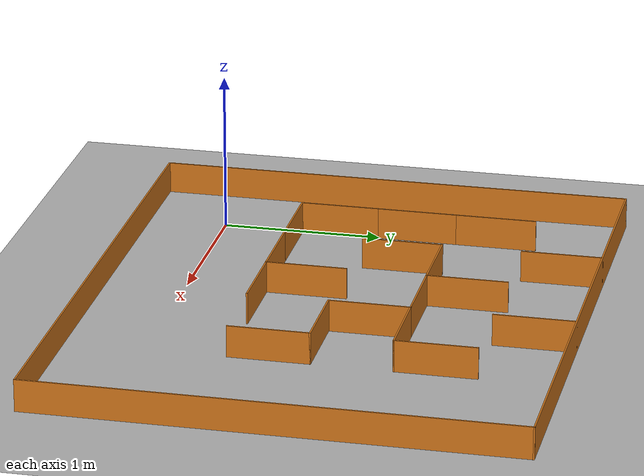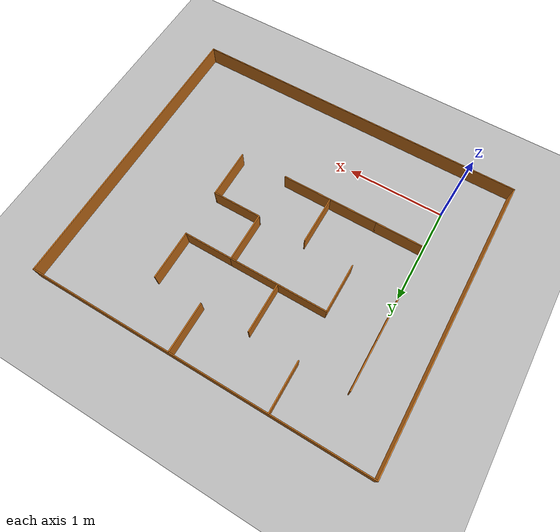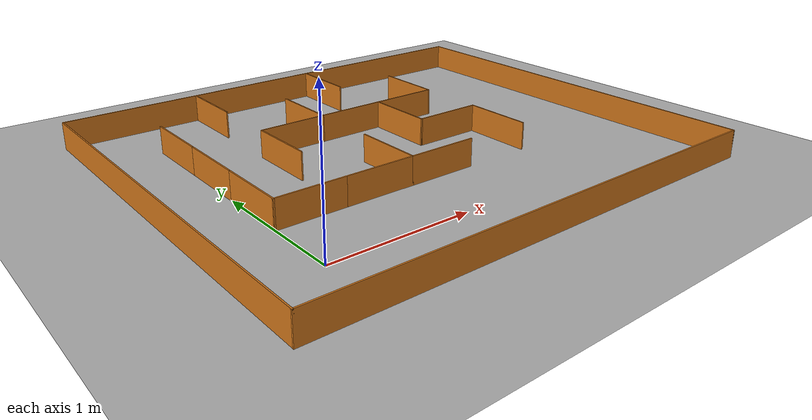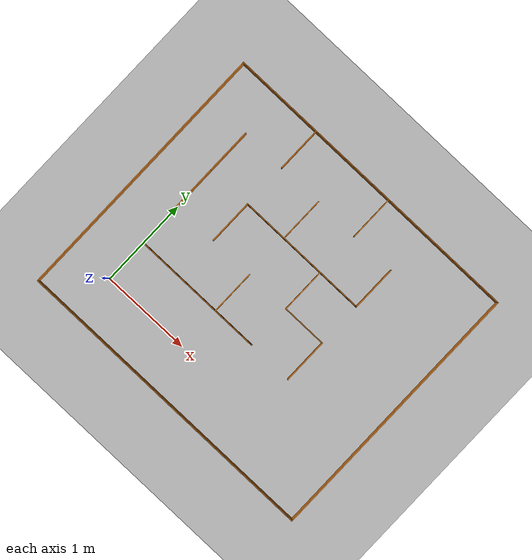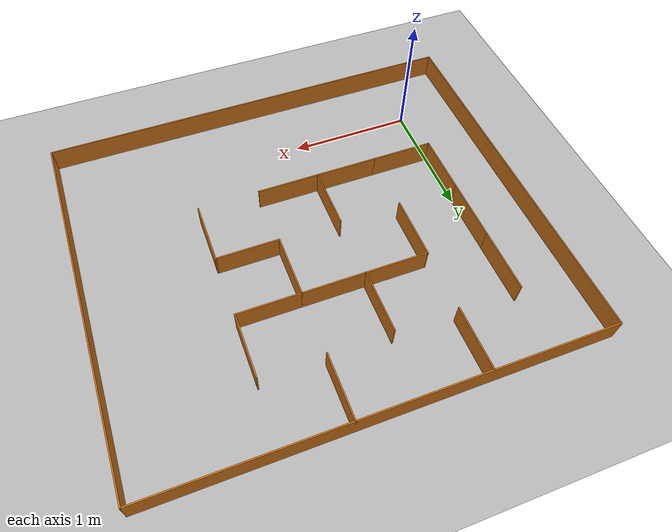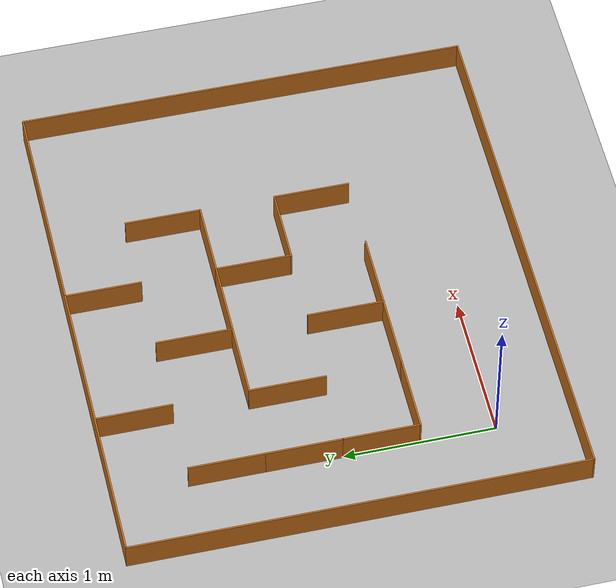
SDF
<?xml version="1.0" ?>
<!-- GENERATED by maze_tools.py from config/maze_layout.yaml - edit the layout, not this file. -->
<sdf version="1.8">
  <world name="maze">
    <physics name="1ms" type="ignored"><max_step_size>0.004</max_step_size><real_time_factor>1.0</real_time_factor></physics>
    <plugin filename="gz-sim-physics-system" name="gz::sim::systems::Physics"/>
    <plugin filename="gz-sim-user-commands-system" name="gz::sim::systems::UserCommands"/>
    <plugin filename="gz-sim-scene-broadcaster-system" name="gz::sim::systems::SceneBroadcaster"/>
    <plugin filename="gz-sim-sensors-system" name="gz::sim::systems::Sensors">
      <render_engine>ogre2</render_engine>
    </plugin>
    <plugin filename="gz-sim-imu-system" name="gz::sim::systems::Imu"/>
    <light type="directional" name="sun">
      <cast_shadows>false</cast_shadows><pose>0 0 10 0 0 0</pose>
      <diffuse>0.9 0.9 0.9 1</diffuse><specular>0.2 0.2 0.2 1</specular>
      <direction>-0.5 0.1 -0.9</direction>
    </light>
    <model name="ground_plane">
      <static>true</static>
      <pose>1.2500 1.0000 0 0 0 0</pose>
      <link name="link">
        <collision name="collision"><geometry><plane><normal>0 0 1</normal><size>6 6</size></plane></geometry></collision>
        <visual name="visual"><geometry><plane><normal>0 0 1</normal><size>6 6</size></plane></geometry>
          <material><ambient>0.7 0.7 0.7 1</ambient><diffuse>0.7 0.7 0.7 1</diffuse></material></visual>
      </link>
    </model>
    <model name="wall_00">
      <static>true</static>
      <pose>1.2500 2.5000 0.100 0 0 0.00000</pose>
      <link name="link">
        <collision name="collision"><geometry><box><size>3.5100 0.01 0.2</size></box></geometry></collision>
        <visual name="visual">
          <geometry><box><size>3.5100 0.01 0.2</size></box></geometry>
          <material><ambient>0.8 0.45 0.1 1</ambient><diffuse>0.8 0.45 0.1 1</diffuse></material>
        </visual>
      </link>
    </model>
    <model name="wall_01">
      <static>true</static>
      <pose>1.2500 -0.5000 0.100 0 0 0.00000</pose>
      <link name="link">
        <collision name="collision"><geometry><box><size>3.5100 0.01 0.2</size></box></geometry></collision>
        <visual name="visual">
          <geometry><box><size>3.5100 0.01 0.2</size></box></geometry>
          <material><ambient>0.8 0.45 0.1 1</ambient><diffuse>0.8 0.45 0.1 1</diffuse></material>
        </visual>
      </link>
    </model>
    <model name="wall_02">
      <static>true</static>
      <pose>-0.5000 1.0000 0.100 0 0 1.57080</pose>
      <link name="link">
        <collision name="collision"><geometry><box><size>3.0100 0.01 0.2</size></box></geometry></collision>
        <visual name="visual">
          <geometry><box><size>3.0100 0.01 0.2</size></box></geometry>
          <material><ambient>0.8 0.45 0.1 1</ambient><diffuse>0.8 0.45 0.1 1</diffuse></material>
        </visual>
      </link>
    </model>
    <model name="wall_03">
      <static>true</static>
      <pose>3.0000 1.0000 0.100 0 0 1.57080</pose>
      <link name="link">
        <collision name="collision"><geometry><box><size>3.0100 0.01 0.2</size></box></geometry></collision>
        <visual name="visual">
          <geometry><box><size>3.0100 0.01 0.2</size></box></geometry>
          <material><ambient>0.8 0.45 0.1 1</ambient><diffuse>0.8 0.45 0.1 1</diffuse></material>
        </visual>
      </link>
    </model>
    <model name="wall_04">
      <static>true</static>
      <pose>0.0000 1.7500 0.100 0 0 1.57080</pose>
      <link name="link">
        <collision name="collision"><geometry><box><size>0.5100 0.01 0.2</size></box></geometry></collision>
        <visual name="visual">
          <geometry><box><size>0.5100 0.01 0.2</size></box></geometry>
          <material><ambient>0.8 0.45 0.1 1</ambient><diffuse>0.8 0.45 0.1 1</diffuse></material>
        </visual>
      </link>
    </model>
    <model name="wall_05">
      <static>true</static>
      <pose>0.0000 1.2500 0.100 0 0 1.57080</pose>
      <link name="link">
        <collision name="collision"><geometry><box><size>0.5100 0.01 0.2</size></box></geometry></collision>
        <visual name="visual">
          <geometry><box><size>0.5100 0.01 0.2</size></box></geometry>
          <material><ambient>0.8 0.45 0.1 1</ambient><diffuse>0.8 0.45 0.1 1</diffuse></material>
        </visual>
      </link>
    </model>
    <model name="wall_06">
      <static>true</static>
      <pose>0.0000 0.7500 0.100 0 0 1.57080</pose>
      <link name="link">
        <collision name="collision"><geometry><box><size>0.5100 0.01 0.2</size></box></geometry></collision>
        <visual name="visual">
          <geometry><box><size>0.5100 0.01 0.2</size></box></geometry>
          <material><ambient>0.8 0.45 0.1 1</ambient><diffuse>0.8 0.45 0.1 1</diffuse></material>
        </visual>
      </link>
    </model>
    <model name="wall_07">
      <static>true</static>
      <pose>0.5000 2.2500 0.100 0 0 1.57080</pose>
      <link name="link">
        <collision name="collision"><geometry><box><size>0.5100 0.01 0.2</size></box></geometry></collision>
        <visual name="visual">
          <geometry><box><size>0.5100 0.01 0.2</size></box></geometry>
          <material><ambient>0.8 0.45 0.1 1</ambient><diffuse>0.8 0.45 0.1 1</diffuse></material>
        </visual>
      </link>
    </model>
    <model name="wall_08">
      <static>true</static>
      <pose>0.5000 1.2500 0.100 0 0 1.57080</pose>
      <link name="link">
        <collision name="collision"><geometry><box><size>0.5100 0.01 0.2</size></box></geometry></collision>
        <visual name="visual">
          <geometry><box><size>0.5100 0.01 0.2</size></box></geometry>
          <material><ambient>0.8 0.45 0.1 1</ambient><diffuse>0.8 0.45 0.1 1</diffuse></material>
        </visual>
      </link>
    </model>
    <model name="wall_09">
      <static>true</static>
      <pose>1.0000 1.7500 0.100 0 0 1.57080</pose>
      <link name="link">
        <collision name="collision"><geometry><box><size>0.5100 0.01 0.2</size></box></geometry></collision>
        <visual name="visual">
          <geometry><box><size>0.5100 0.01 0.2</size></box></geometry>
          <material><ambient>0.8 0.45 0.1 1</ambient><diffuse>0.8 0.45 0.1 1</diffuse></material>
        </visual>
      </link>
    </model>
    <model name="wall_10">
      <static>true</static>
      <pose>1.0000 0.7500 0.100 0 0 1.57080</pose>
      <link name="link">
        <collision name="collision"><geometry><box><size>0.5100 0.01 0.2</size></box></geometry></collision>
        <visual name="visual">
          <geometry><box><size>0.5100 0.01 0.2</size></box></geometry>
          <material><ambient>0.8 0.45 0.1 1</ambient><diffuse>0.8 0.45 0.1 1</diffuse></material>
        </visual>
      </link>
    </model>
    <model name="wall_11">
      <static>true</static>
      <pose>1.5000 2.2500 0.100 0 0 1.57080</pose>
      <link name="link">
        <collision name="collision"><geometry><box><size>0.5100 0.01 0.2</size></box></geometry></collision>
        <visual name="visual">
          <geometry><box><size>0.5100 0.01 0.2</size></box></geometry>
          <material><ambient>0.8 0.45 0.1 1</ambient><diffuse>0.8 0.45 0.1 1</diffuse></material>
        </visual>
      </link>
    </model>
    <model name="wall_12">
      <static>true</static>
      <pose>1.5000 1.2500 0.100 0 0 1.57080</pose>
      <link name="link">
        <collision name="collision"><geometry><box><size>0.5100 0.01 0.2</size></box></geometry></collision>
        <visual name="visual">
          <geometry><box><size>0.5100 0.01 0.2</size></box></geometry>
          <material><ambient>0.8 0.45 0.1 1</ambient><diffuse>0.8 0.45 0.1 1</diffuse></material>
        </visual>
      </link>
    </model>
    <model name="wall_13">
      <static>true</static>
      <pose>2.0000 1.7500 0.100 0 0 1.57080</pose>
      <link name="link">
        <collision name="collision"><geometry><box><size>0.5100 0.01 0.2</size></box></geometry></collision>
        <visual name="visual">
          <geometry><box><size>0.5100 0.01 0.2</size></box></geometry>
          <material><ambient>0.8 0.45 0.1 1</ambient><diffuse>0.8 0.45 0.1 1</diffuse></material>
        </visual>
      </link>
    </model>
    <model name="wall_14">
      <static>true</static>
      <pose>2.0000 0.7500 0.100 0 0 1.57080</pose>
      <link name="link">
        <collision name="collision"><geometry><box><size>0.5100 0.01 0.2</size></box></geometry></collision>
        <visual name="visual">
          <geometry><box><size>0.5100 0.01 0.2</size></box></geometry>
          <material><ambient>0.8 0.45 0.1 1</ambient><diffuse>0.8 0.45 0.1 1</diffuse></material>
        </visual>
      </link>
    </model>
    <model name="wall_15">
      <static>true</static>
      <pose>0.7500 1.5000 0.100 0 0 0.00000</pose>
      <link name="link">
        <collision name="collision"><geometry><box><size>0.5100 0.01 0.2</size></box></geometry></collision>
        <visual name="visual">
          <geometry><box><size>0.5100 0.01 0.2</size></box></geometry>
          <material><ambient>0.8 0.45 0.1 1</ambient><diffuse>0.8 0.45 0.1 1</diffuse></material>
        </visual>
      </link>
    </model>
    <model name="wall_16">
      <static>true</static>
      <pose>1.2500 1.5000 0.100 0 0 0.00000</pose>
      <link name="link">
        <collision name="collision"><geometry><box><size>0.5100 0.01 0.2</size></box></geometry></collision>
        <visual name="visual">
          <geometry><box><size>0.5100 0.01 0.2</size></box></geometry>
          <material><ambient>0.8 0.45 0.1 1</ambient><diffuse>0.8 0.45 0.1 1</diffuse></material>
        </visual>
      </link>
    </model>
    <model name="wall_17">
      <static>true</static>
      <pose>1.7500 1.5000 0.100 0 0 0.00000</pose>
      <link name="link">
        <collision name="collision"><geometry><box><size>0.5100 0.01 0.2</size></box></geometry></collision>
        <visual name="visual">
          <geometry><box><size>0.5100 0.01 0.2</size></box></geometry>
          <material><ambient>0.8 0.45 0.1 1</ambient><diffuse>0.8 0.45 0.1 1</diffuse></material>
        </visual>
      </link>
    </model>
    <model name="wall_18">
      <static>true</static>
      <pose>1.7500 1.0000 0.100 0 0 0.00000</pose>
      <link name="link">
        <collision name="collision"><geometry><box><size>0.5100 0.01 0.2</size></box></geometry></collision>
        <visual name="visual">
          <geometry><box><size>0.5100 0.01 0.2</size></box></geometry>
          <material><ambient>0.8 0.45 0.1 1</ambient><diffuse>0.8 0.45 0.1 1</diffuse></material>
        </visual>
      </link>
    </model>
    <model name="wall_19">
      <static>true</static>
      <pose>0.2500 0.5000 0.100 0 0 0.00000</pose>
      <link name="link">
        <collision name="collision"><geometry><box><size>0.5100 0.01 0.2</size></box></geometry></collision>
        <visual name="visual">
          <geometry><box><size>0.5100 0.01 0.2</size></box></geometry>
          <material><ambient>0.8 0.45 0.1 1</ambient><diffuse>0.8 0.45 0.1 1</diffuse></material>
        </visual>
      </link>
    </model>
    <model name="wall_20">
      <static>true</static>
      <pose>0.7500 0.5000 0.100 0 0 0.00000</pose>
      <link name="link">
        <collision name="collision"><geometry><box><size>0.5100 0.01 0.2</size></box></geometry></collision>
        <visual name="visual">
          <geometry><box><size>0.5100 0.01 0.2</size></box></geometry>
          <material><ambient>0.8 0.45 0.1 1</ambient><diffuse>0.8 0.45 0.1 1</diffuse></material>
        </visual>
      </link>
    </model>
    <model name="wall_21">
      <static>true</static>
      <pose>1.2500 0.5000 0.100 0 0 0.00000</pose>
      <link name="link">
        <collision name="collision"><geometry><box><size>0.5100 0.01 0.2</size></box></geometry></collision>
        <visual name="visual">
          <geometry><box><size>0.5100 0.01 0.2</size></box></geometry>
          <material><ambient>0.8 0.45 0.1 1</ambient><diffuse>0.8 0.45 0.1 1</diffuse></material>
        </visual>
      </link>
    </model>
  </world>
</sdf>
